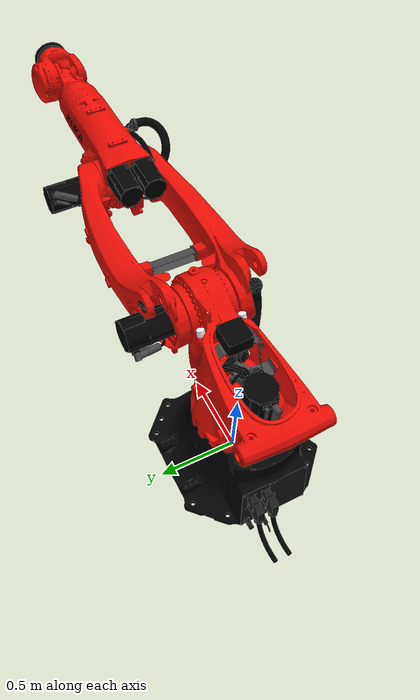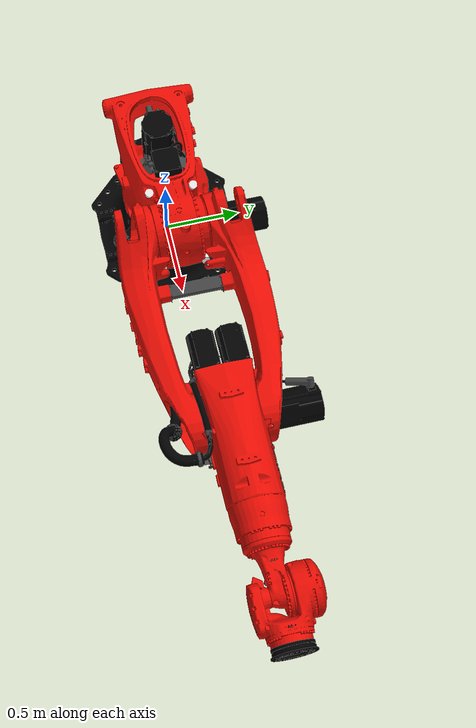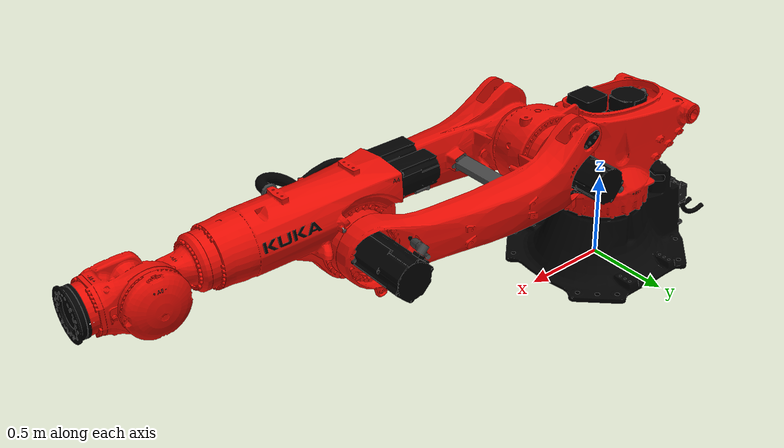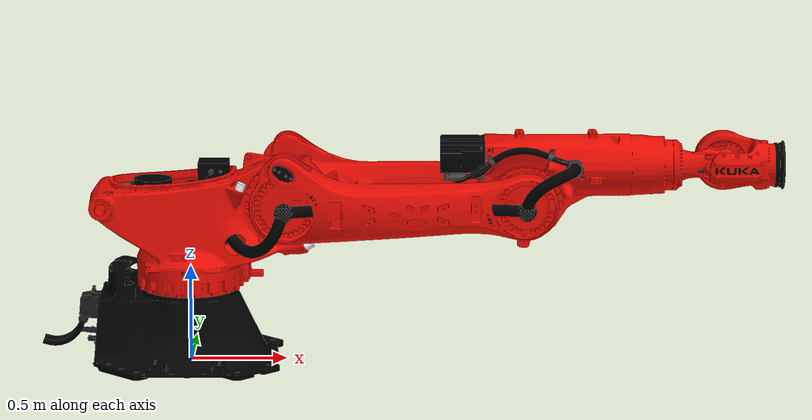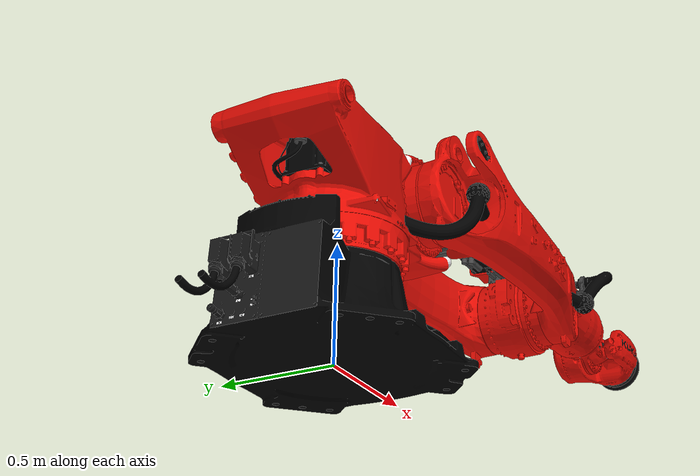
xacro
<?xml version="1.0" encoding="UTF-8"?>
<robot xmlns:xacro="http://www.ros.org/wiki/xacro" name="kr640_r2800_2_">
  <!-- Import urdf files  -->
  <xacro:include filename="$(find kuka_fortec_support)/urdf/kr640_r2800_2__macro.xacro"/>
  <xacro:include filename="$(find kuka_fortec_support)/urdf/kr_fortec_ros2_control_macro.xacro"/>
  <!-- Basic arguments  -->
  <xacro:arg name="prefix" default=""/>
  <xacro:arg name="is_async" default="false"/>
  <xacro:arg name="async_thread_priority" default="69"/>
  <xacro:arg name="async_affinity" default="[]"/>
  <xacro:arg name="x" default="0"/>
  <xacro:arg name="y" default="0"/>
  <xacro:arg name="z" default="0"/>
  <xacro:arg name="roll" default="0"/>
  <xacro:arg name="pitch" default="0"/>
  <xacro:arg name="yaw" default="0"/>
  <!-- driver-specific arguments -->
  <xacro:arg name="driver_version" default="rsi_only"/>
  <xacro:arg name="mode" default="hardware"/>
  <xacro:arg name="gpio_config" default=""/>
  <xacro:arg name="roundtrip_time" default="0"/>
  <xacro:arg name="client_ip" default="0.0.0.0"/>
  <xacro:arg name="client_port" default="59152"/>
  <xacro:arg name="mxa_client_port" default="1337"/>
  <xacro:arg name="controller_ip" default="0.0.0.0"/>
  <xacro:arg name="verify_robot_model" default="true"/>
  <xacro:arg name="rsi_xml_config_file" default=""/>
  <xacro:kuka_fortec_ros2_control name="$(arg prefix)kr640_r2800_2_" driver_version="$(arg driver_version)" client_ip="$(arg client_ip)" client_port="$(arg client_port)" mxa_client_port="$(arg mxa_client_port)" controller_ip="$(arg controller_ip)" prefix="$(arg prefix)" mode="$(arg mode)" gpio_config="$(arg gpio_config)" roundtrip_time="$(arg roundtrip_time)" verify_robot_model="$(arg verify_robot_model)" rsi_xml_config_file="$(arg rsi_xml_config_file)" is_async="$(arg is_async)" async_thread_priority="$(arg async_thread_priority)" async_affinity="$(arg async_affinity)">
    <ext_axes_ros2_control_joints/>
  </xacro:kuka_fortec_ros2_control>
  <!-- world link -->
  <link name="world"/>
  <!-- robot links, joints -->
  <xacro:kuka_kr640_r2800_2__robot prefix="$(arg prefix)" package_name="kuka_fortec_support"/>
  <!-- default world - base_link joint -->
  <joint name="$(arg prefix)world-base_link" type="fixed">
    <parent link="world"/>
    <child link="$(arg prefix)base_link"/>
    <origin xyz="$(arg x) $(arg y) $(arg z)" rpy="$(arg roll) $(arg pitch) $(arg yaw)"/>
  </joint>
</robot>

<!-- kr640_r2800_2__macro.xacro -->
<robot xmlns:xacro="http://www.ros.org/wiki/xacro" name="kr640_r2800_2_">
  <xacro:macro name="kuka_kr640_r2800_2__robot" params="prefix package_name">
    <link name="${prefix}base"/>
    <link name="${prefix}base_link">
      <collision>
        <geometry>
          <mesh filename="package://${package_name}/meshes/kr640_r2800_2_/collision/base_link.stl"/>
        </geometry>
        <origin rpy="0.0 0.0 0.0" xyz="0.0 0.0 0.0"/>
      </collision>
      <inertial>
        <inertia ixx="35.410866659825984" ixy="0.0" ixz="0.0" iyy="34.55474294133751" iyz="0.0" izz="38.97491524228647"/>
        <mass value="438.39"/>
        <origin rpy="-0.2634507794798889 -0.011417952338033853 -1.583116210409526" xyz="-0.02196341111795434 0.00026633773580602294 0.2908246588653938"/>
      </inertial>
      <visual>
        <geometry>
          <mesh filename="package://${package_name}/meshes/kr640_r2800_2_/visual/base_link.dae"/>
        </geometry>
        <origin rpy="0.0 0.0 0.0" xyz="0.0 0.0 0.0"/>
      </visual>
    </link>
    <link name="${prefix}flange"/>
    <link name="${prefix}link_1">
      <collision>
        <geometry>
          <mesh filename="package://${package_name}/meshes/kr640_r2800_2_/collision/link_1.stl"/>
        </geometry>
        <origin rpy="-3.141592653589793 0.0 -0.0" xyz="0.0 -5.634599922876973e-17 0.4601"/>
      </collision>
      <inertial>
        <inertia ixx="68.8871727481765" ixy="0.0" ixz="0.0" iyy="31.9479323362134" iyz="0.0" izz="84.5563373850468"/>
        <mass value="557.48"/>
        <origin rpy="-1.8734135274052497 -1.508489219626719 0.3067102587867492" xyz="0.0812269789050728 0.00860667378201908 -0.29662668257157204"/>
      </inertial>
      <visual>
        <geometry>
          <mesh filename="package://${package_name}/meshes/kr640_r2800_2_/visual/link_1.dae"/>
        </geometry>
        <origin rpy="-3.141592653589793 0.0 -0.0" xyz="0.0 -5.634599922876973e-17 0.4601"/>
      </visual>
    </link>
    <link name="${prefix}link_2">
      <collision>
        <geometry>
          <mesh filename="package://${package_name}/meshes/kr640_r2800_2_/collision/link_2.stl"/>
        </geometry>
        <origin rpy="1.5707963267948968 -0.0 1.5707963267948966" xyz="-0.86 -0.49999999999999994 1.0900581159210591e-16"/>
      </collision>
      <inertial>
        <inertia ixx="221.939471725851" ixy="0.0" ixz="0.0" iyy="40.4612002459974" iyz="0.0" izz="249.414152725649"/>
        <mass value="698.21"/>
        <origin rpy="1.6965852123660146 -1.5531643326833369 3.0310396837598232" xyz="0.543575843084459 -0.00783543231978918 0.0242353638590109"/>
      </inertial>
      <visual>
        <geometry>
          <mesh filename="package://${package_name}/meshes/kr640_r2800_2_/visual/link_2.dae"/>
        </geometry>
        <origin rpy="1.5707963267948968 -0.0 1.5707963267948966" xyz="-0.86 -0.49999999999999994 1.0900581159210591e-16"/>
      </visual>
    </link>
    <link name="${prefix}link_3">
      <collision>
        <geometry>
          <mesh filename="package://${package_name}/meshes/kr640_r2800_2_/collision/link_3.stl"/>
        </geometry>
        <origin rpy="1.5707963267948968 -0.0 -0.0" xyz="-0.5000000000000001 2.11 1.0900581159210584e-16"/>
      </collision>
      <inertial>
        <inertia ixx="6.30840213271945" ixy="0.0" ixz="0.0" iyy="26.687628198328" iyz="0.0" izz="29.5636589044743"/>
        <mass value="241.307"/>
        <origin rpy="0.028058985026686887 -0.0033112229141201146 -0.07508596727782248" xyz="0.129307355539367 -0.12237728273757201 -0.00523857740169044"/>
      </inertial>
      <visual>
        <geometry>
          <mesh filename="package://${package_name}/meshes/kr640_r2800_2_/visual/link_3.dae"/>
        </geometry>
        <origin rpy="1.5707963267948968 -0.0 -0.0" xyz="-0.5000000000000001 2.11 1.0900581159210584e-16"/>
      </visual>
    </link>
    <link name="${prefix}link_4">
      <collision>
        <geometry>
          <mesh filename="package://${package_name}/meshes/kr640_r2800_2_/collision/link_4.stl"/>
        </geometry>
        <origin rpy="1.8369701987210297e-16 1.5707963267948966 0.0" xyz="-2.29 3.479833879777203e-17 1.2118999999999998"/>
      </collision>
      <inertial>
        <inertia ixx="0.693678008600892" ixy="0.0" ixz="0.0" iyy="2.78506557610754" iyz="0.0" izz="2.86251005408283"/>
        <mass value="97.442"/>
        <origin rpy="1.570932272091058 -1.2743253802401948 -1.570766714386286" xyz="-5.43869794830743e-07 0.042293334372276704 -0.18193497897866"/>
      </inertial>
      <visual>
        <geometry>
          <mesh filename="package://${package_name}/meshes/kr640_r2800_2_/visual/link_4.dae"/>
        </geometry>
        <origin rpy="1.8369701987210297e-16 1.5707963267948966 0.0" xyz="-2.29 3.479833879777203e-17 1.2118999999999998"/>
      </visual>
    </link>
    <link name="${prefix}link_5">
      <collision>
        <geometry>
          <mesh filename="package://${package_name}/meshes/kr640_r2800_2_/collision/link_5.stl"/>
        </geometry>
        <origin rpy="1.5707963267948968 -3.749399456654644e-33 -6.123233995736766e-17" xyz="-1.5344999999999998 2.29 -0.1251"/>
      </collision>
      <inertial>
        <inertia ixx="1.10203832546012" ixy="0.0" ixz="0.0" iyy="0.783938692397306" iyz="0.0" izz="1.20828474699799"/>
        <mass value="53.6088"/>
        <origin rpy="-1.5642278602027897 -0.8175710147649965 -0.011709797778755686" xyz="0.06813413576091991 -4.9894728477414005e-05 -0.0893390051226664"/>
      </inertial>
      <visual>
        <geometry>
          <mesh filename="package://${package_name}/meshes/kr640_r2800_2_/visual/link_5.dae"/>
        </geometry>
        <origin rpy="1.5707963267948968 -3.749399456654644e-33 -6.123233995736766e-17" xyz="-1.5344999999999998 2.29 -0.1251"/>
      </visual>
    </link>
    <link name="${prefix}link_6">
      <collision>
        <geometry>
          <mesh filename="package://${package_name}/meshes/kr640_r2800_2_/collision/link_6.stl"/>
        </geometry>
        <origin rpy="1.2246467991473532e-16 1.5707963267948966 0.0" xyz="-2.29 -1.0542371970459997e-16 1.7495999999999998"/>
      </collision>
      <inertial>
        <inertia ixx="0.154627253223927" ixy="0.0" ixz="0.0" iyy="0.154759872890913" iyz="0.0" izz="0.18961138268388"/>
        <mass value="32.02"/>
        <origin rpy="0.00204716513409031 7.47690402486118e-05 -1.5692303732484225" xyz="-4.86570893191755e-05 -2.5301686445971304e-06 -0.0203013397876327"/>
      </inertial>
      <visual>
        <geometry>
          <mesh filename="package://${package_name}/meshes/kr640_r2800_2_/visual/link_6.dae"/>
        </geometry>
        <origin rpy="1.2246467991473532e-16 1.5707963267948966 0.0" xyz="-2.29 -1.0542371970459997e-16 1.7495999999999998"/>
      </visual>
    </link>
    <link name="${prefix}tool0"/>
    <joint name="${prefix}base_link-base" type="fixed">
      <child link="${prefix}base"/>
      <origin rpy="0.0 0.0 0.0" xyz="0.0 0.0 0.0"/>
      <parent link="${prefix}base_link"/>
    </joint>
    <joint name="${prefix}joint_1" type="revolute">
      <axis xyz="0.0 0.0 1.0"/>
      <child link="${prefix}link_1"/>
      <limit effort="15000.0" lower="-3.2288591161895095" upper="3.2288591161895095" velocity="1.5707963267949"/>
      <origin rpy="3.141592653589793 0.0 0.0" xyz="0.0 0.0 0.4601"/>
      <parent link="${prefix}base_link"/>
    </joint>
    <joint name="${prefix}joint_2" type="revolute">
      <axis xyz="0.0 0.0 1.0"/>
      <child link="${prefix}link_2"/>
      <limit effort="17880.0" lower="-2.2689280275926285" upper="0.3490658503988659" velocity="1.39626340159546"/>
      <origin rpy="1.5707963267948966 0.0 0.0" xyz="0.5 0.0 -0.3999"/>
      <parent link="${prefix}link_1"/>
    </joint>
    <joint name="${prefix}joint_3" type="revolute">
      <axis xyz="0.0 0.0 1.0"/>
      <child link="${prefix}link_3"/>
      <limit effort="15041.856735631009" lower="-1.7453292519943295" upper="2.8797932657906435" velocity="1.30899693899575"/>
      <origin rpy="0.0 0.0 0.0" xyz="1.25 0.0 0.0"/>
      <parent link="${prefix}link_2"/>
    </joint>
    <joint name="${prefix}joint_4" type="revolute">
      <axis xyz="0.0 0.0 1.0"/>
      <child link="${prefix}link_4"/>
      <limit effort="5457.717723263356" lower="-6.1086523819801535" upper="6.1086523819801535" velocity="1.5707963267949"/>
      <origin rpy="1.5707963267948966 0.0 -1.5707963267948966" xyz="0.7119 -0.18 0.0"/>
      <parent link="${prefix}link_3"/>
    </joint>
    <joint name="${prefix}joint_5" type="revolute">
      <axis xyz="0.0 0.0 1.0"/>
      <child link="${prefix}link_5"/>
      <limit effort="5463.57863453769" lower="-2.0943951023931953" upper="2.0943951023931953" velocity="1.5707963267949"/>
      <origin rpy="0.0 1.5707963267948966 1.5707963267948966" xyz="0.0 0.1251 -0.3226"/>
      <parent link="${prefix}link_4"/>
    </joint>
    <joint name="${prefix}joint_6" type="revolute">
      <axis xyz="0.0 0.0 1.0"/>
      <child link="${prefix}link_6"/>
      <limit effort="2620.659024247949" lower="-6.1086523819801535" upper="6.1086523819801535" velocity="2.26892802759263"/>
      <origin rpy="1.5707963267948966 0.0 -1.5707963267948966" xyz="0.21509999999999999 0.0 -0.1251"/>
      <parent link="${prefix}link_5"/>
    </joint>
    <joint name="${prefix}link_6-flange" type="fixed">
      <child link="${prefix}flange"/>
      <origin rpy="0.0 1.5707963267948966 0.0" xyz="0.0 0.0 -0.08990000000000001"/>
      <parent link="${prefix}link_6"/>
    </joint>
    <joint name="${prefix}link_6-tool0" type="fixed">
      <child link="${prefix}tool0"/>
      <origin rpy="3.141592653589793 0.0 3.141592653589793" xyz="0.0 0.0 -0.08990000000000001"/>
      <parent link="${prefix}link_6"/>
    </joint>
  </xacro:macro>
</robot>
